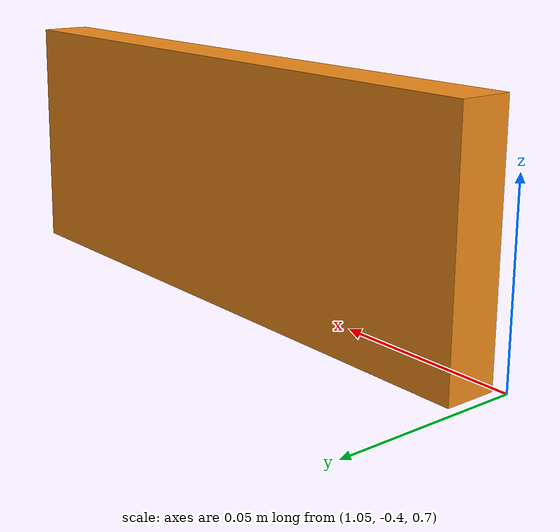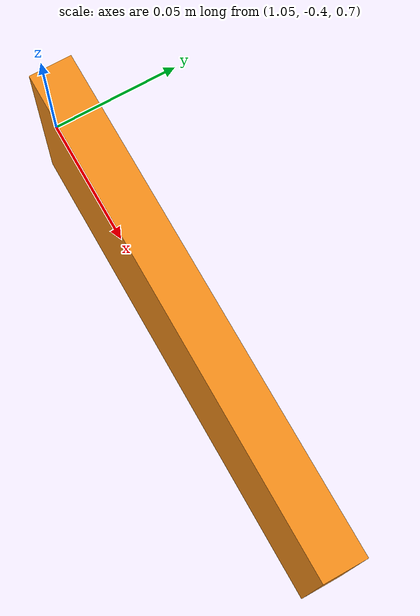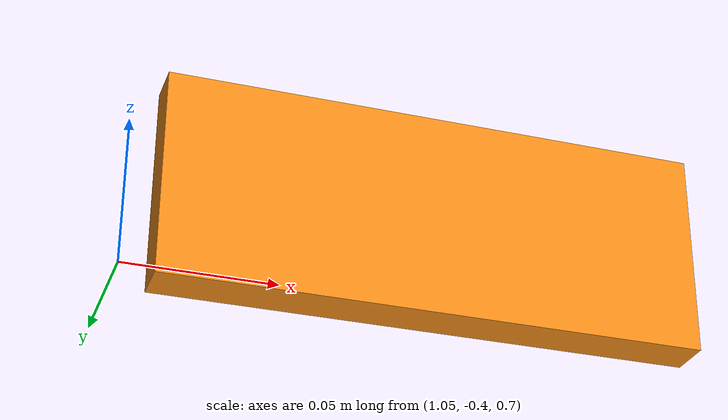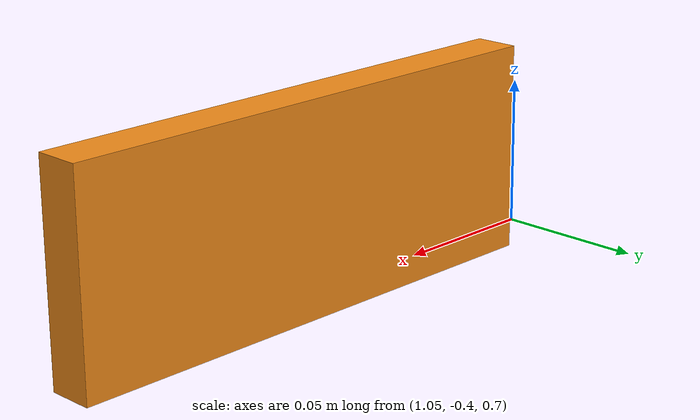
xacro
<?xml version="1.0" ?>
<robot xmlns:xacro="http://ros.org/wiki/xacro">

	<property name="M_PI" value="3.1415926535897931" />
	<property name="HEIGTH" value="1.1" />
	<property name="HAND_LENGTH" value="0.18" />
	<property name="HAND_WIDTH" value="0.07" />
	<property name="HAND_THICK" value="0.015" />

	<property name="prefix" value="human_" />

  	<link name="${prefix}hand_link">
            <visual>
                <origin xyz="1.15 -0.4 ${(HEIGTH/2)+HAND_LENGTH}" rpy="0 0 0" />
                <geometry name="${prefix}hand_visual_geom">
                    <box size="${HAND_LENGTH} ${HAND_THICK} ${HAND_WIDTH}"/>
                </geometry>
                <material name="orange"/>
            </visual>
            <collision>
                <origin xyz="1.15 -0.4 ${(HEIGTH/2)+HAND_LENGTH}" rpy="0 0 0" />
                <geometry name="${prefix}hand_coll_geom">
                     <box size="${HAND_LENGTH} ${HAND_THICK} ${HAND_WIDTH}"/>
                </geometry>
            </collision>
    	    <inertial>
    		<mass value="1"/>
                <inertia ixx="1" ixy="0.0" ixz="0.0" iyy="1" iyz="0.0" izz="1"/>
    	    </inertial>
        </link>

        <gazebo reference="${prefix}hand_link">
           <material>Gazebo/Orange</material>
   	   <turnGravityOff>true</turnGravityOff>
	   <selfCollide>true</selfCollide>
  	</gazebo>

  </robot>
